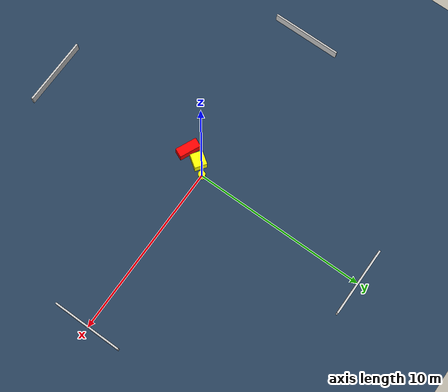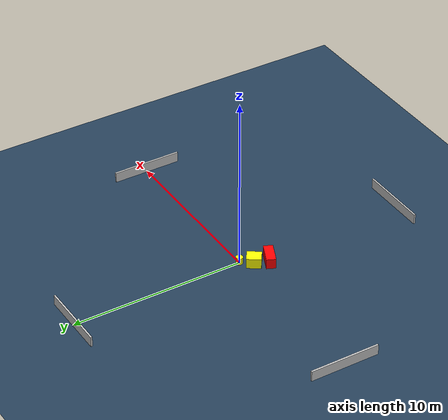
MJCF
<?xml version="1.0" ?>
<mujoco model="generated_environment">
  <option timestep="0.01" integrator="RK4" cone="elliptic"/>
  <default>
    <geom density="1"/>
  </default>
  <asset>
    <texture builtin="gradient" height="3072" name="skybox" rgb1="0.3 0.5 0.7" rgb2="0 0 0" type="skybox" width="512"/>
    <texture builtin="checker" height="300" name="groundplane" rgb1="0.2 0.3 0.4" rgb2="0.1 0.2 0.3" type="2d" width="300"/>
    <material name="groundplane" reflectance="0.2" texrepeat="5 5" texture="groundplane"/>
  </asset>
  <worldbody>
    <light dir="0 0 -1" directional="true" pos="0 0 1.5"/>
    <geom condim="3" friction="0.5 0.005 0.001" material="groundplane" name="floor" pos="0 0 0" size="0 0 0.05" type="plane"/>
    <body name="walls">
      <geom name="wall_1" condim="4" pos="-10.0 0.0 0.3" rgba="0.800000011920929 0.800000011920929 0.800000011920929 1.0" size="0.05 2.0 0.3" type="box"/>
      <geom name="wall_2" condim="4" pos="10.0 0.0 0.3" rgba="0.800000011920929 0.800000011920929 0.800000011920929 1.0" size="0.05 2.0 0.3" type="box"/>
      <geom name="wall_3" condim="4" pos="0.0 -10.0 0.3" rgba="0.800000011920929 0.800000011920929 0.800000011920929 1.0" size="2.0 0.05 0.3" type="box"/>
      <geom name="wall_4" condim="4" pos="0.0 10.0 0.3" rgba="0.800000011920929 0.800000011920929 0.800000011920929 1.0" size="2.0 0.05 0.3" type="box"/>
    </body>
    <body name="robot">
      <joint name="joint_x" type="slide" pos="0 0 0" axis="1 0 0"/>
      <joint name="joint_y" type="slide" pos="0 0 0" axis="0 1 0"/>
      <geom name="robot" type="cylinder" pos="0.0 0.0 0.2" size="0.2 0.2 0.0" mass="5.0" friction="1.0 0.005 0.0001" condim="4" rgba="1.0 1.0 0.0 1.0"/>
    </body>
    <body name="obstacle_1_movable">
      <geom name="obstacle_1_movable" condim="4" pos="-0.5166122464595799 -0.5888583267685514 0.3" euler="0 0 235.20274457471567" friction="0.0 0.005 0.001" rgba="1.0 1.0 0.0 1.0" size="0.40901823693539563 0.3592280204076089 0.3" type="box" mass="0.1"/>
      <joint type="free"/>
    </body>
    <body name="obstacle_2_static">
      <geom name="obstacle_2_static" condim="4" pos="-0.7267778098291703 -1.4328734245496524 0.3" euler="0 0 65.99258815799674" friction="0.0 0.005 0.001" rgba="1.0 0.0 0.0 1.0" size="0.2664981839629818 0.6290425794510558 0.3" type="box"/>
    </body>
  </worldbody>
  <actuator>
    <motor name="actuator_x" joint="joint_x" gear="1" ctrlrange="-1 1"/>
    <motor name="actuator_y" joint="joint_y" gear="1" ctrlrange="-1 1"/>
  </actuator>
</mujoco>
